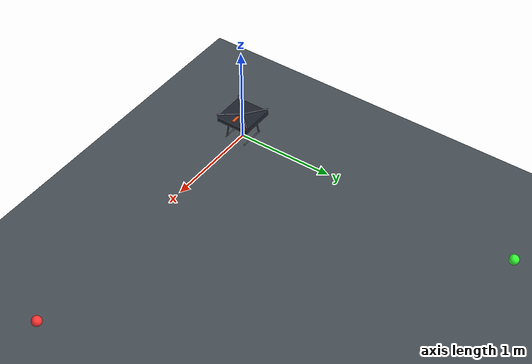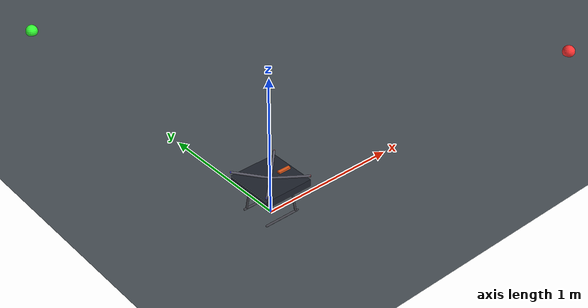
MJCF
<?xml version="1.0" encoding="utf-8"?>
<!-- Minimal X500 derived from px4/PX4-Autopilot/Tools/simulation/gz/models/x500/model.sdf. -->
<mujoco model="px4_x500">
  <compiler angle="radian" coordinate="local"/>
  <option timestep="0.001" gravity="0 0 -9.80665" integrator="RK4" density="1.2" viscosity="0"/>

  <default>
    <geom contype="1" conaffinity="1" condim="3" friction="1.0 0.05 0.05"/>
    <site type="sphere" size="0.008" rgba="1 0 0 1"/>
  </default>

  <visual>
    <headlight ambient="0.4 0.4 0.4"/>
    <global offwidth="1280" offheight="720"/>
  </visual>

  <asset>
    <texture name="grid" type="2d" builtin="checker" rgb1="0.25 0.28 0.30"
             rgb2="0.32 0.35 0.38" width="512" height="512"/>
    <material name="grid" texture="grid" texrepeat="12 12" reflectance="0.05"/>
  </asset>

  <worldbody>
    <!-- MuJoCo world ENU; vehicle body FLU. -->
    <light pos="0 0 6" dir="0 0 -1" diffuse="0.8 0.8 0.8"/>
    <geom name="floor" type="plane" size="60 60 0.1" material="grid" pos="0 0 0"/>
    <site name="east_marker" pos="3 0 0.02" size="0.05" rgba="1 0.2 0.2 1"/>
    <site name="north_marker" pos="0 3 0.02" size="0.05" rgba="0.2 1 0.2 1"/>

    <body name="base_link" pos="0 0 0.24">
      <freejoint name="base_free"/>
      <!-- Aggregate of the SDF base (2 kg) and four 16.0769 g rotor links. -->
      <inertial pos="0 0 0.00186913" mass="2.0643076923076924"
                diaginertia="0.02383948 0.02394241 0.04399995"/>

      <geom name="core" type="box" size="0.1767767 0.1767767 0.025"
            pos="0 0 0.007" density="0" rgba="0.12 0.14 0.18 1"/>
      <geom name="nose" type="box" size="0.045 0.012 0.006" pos="0.11 0 0.04"
            density="0" contype="0" conaffinity="0" rgba="0.9 0.35 0.1 1"/>

      <geom name="arm0" type="capsule" fromto="0 0 0.03 0.174 -0.174 0.06"
            size="0.008" density="0" rgba="0.35 0.35 0.4 1"/>
      <geom name="arm1" type="capsule" fromto="0 0 0.03 -0.174 0.174 0.06"
            size="0.008" density="0" rgba="0.35 0.35 0.4 1"/>
      <geom name="arm2" type="capsule" fromto="0 0 0.03 0.174 0.174 0.06"
            size="0.008" density="0" rgba="0.35 0.35 0.4 1"/>
      <geom name="arm3" type="capsule" fromto="0 0 0.03 -0.174 -0.174 0.06"
            size="0.008" density="0" rgba="0.35 0.35 0.4 1"/>

      <geom name="leg0" type="capsule" fromto="0.09 -0.09 -0.02 0.11 -0.11 -0.22"
            size="0.0075" density="0" rgba="0.25 0.25 0.28 1"/>
      <geom name="leg1" type="capsule" fromto="-0.09 0.09 -0.02 -0.11 0.11 -0.22"
            size="0.0075" density="0" rgba="0.25 0.25 0.28 1"/>
      <geom name="foot0" type="capsule" fromto="-0.125 -0.11 -0.22 0.125 -0.11 -0.22"
            size="0.0075" density="0" rgba="0.25 0.25 0.28 1"/>
      <geom name="foot1" type="capsule" fromto="-0.125 0.11 -0.22 0.125 0.11 -0.22"
            size="0.0075" density="0" rgba="0.25 0.25 0.28 1"/>

      <site name="imu" pos="0 0 0" quat="1 0 0 0"/>
      <!-- PX4 order: front-right CCW, rear-left CCW, front-left CW, rear-right CW. -->
      <site name="rotor0" pos="0.174 -0.174 0.06" rgba="0.9 0.3 0.3 1"/>
      <site name="rotor1" pos="-0.174 0.174 0.06" rgba="0.3 0.3 0.9 1"/>
      <site name="rotor2" pos="0.174 0.174 0.06" rgba="0.9 0.3 0.3 1"/>
      <site name="rotor3" pos="-0.174 -0.174 0.06" rgba="0.3 0.3 0.9 1"/>
    </body>
  </worldbody>

  <sensor>
    <accelerometer name="imu_accel" site="imu"/>
    <gyro name="imu_gyro" site="imu"/>
  </sensor>
</mujoco>
